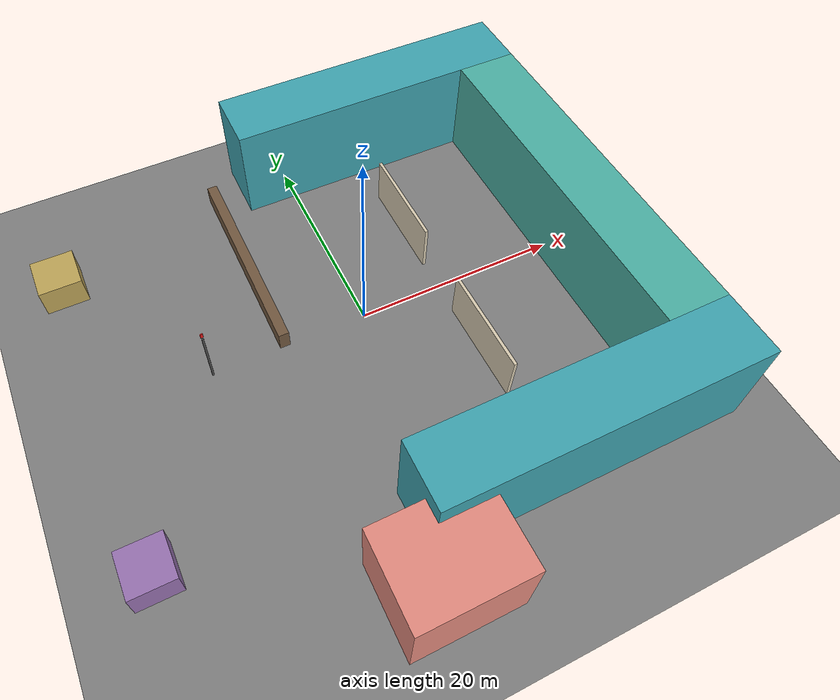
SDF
<?xml version="1.0" ?>
<!-- Scenario 5: Indoor-Outdoor / Building Penetration
     Complex environment with courtyards and building penetration
     Expected: Wall losses significant, ray tracing valuable for multipath -->
<sdf version="1.8">
  <world name="scenario_indoor_outdoor">

    <physics name="1ms" type="ignored">
      <max_step_size>0.001</max_step_size>
      <real_time_factor>1.0</real_time_factor>
    </physics>

    <plugin filename="ignition-gazebo-physics-system"
            name="ignition::gazebo::systems::Physics"/>
    <plugin filename="ignition-gazebo-scene-broadcaster-system"
            name="ignition::gazebo::systems::SceneBroadcaster"/>
    <plugin filename="ignition-gazebo-user-commands-system"
            name="ignition::gazebo::systems::UserCommands"/>

    <plugin filename="libHeatmapPlugin.so"
            name="heatmap_plugin::HeatmapPlugin">
      <grid_w>128</grid_w>
      <grid_h>128</grid_h>
      <cell_size>0.4</cell_size>
      <frequency_hz>3500000000</frequency_hz>
      <tx_dbm>30.0</tx_dbm>
      <tx_height>6.0</tx_height>
      <rx_height>1.5</rx_height>
      <tx_gain_dbi>8.0</tx_gain_dbi>
      <rx_gain_dbi>0.0</rx_gain_dbi>
      <gnb_pose>-15 0 6 0 0 0</gnb_pose>
      <propagation_model>3gpp_umi</propagation_model>
      <wall_loss_db>12.0</wall_loss_db>
      <reflection_coeff>0.7</reflection_coeff>
      <include_shadowing>false</include_shadowing>
      <max_reflections>3</max_reflections>
    </plugin>

    <light type="directional" name="sun">
      <cast_shadows>true</cast_shadows>
      <pose>0 0 30 0 0 0</pose>
      <diffuse>0.8 0.8 0.8 1</diffuse>
      <specular>0.2 0.2 0.2 1</specular>
      <direction>-0.5 0.1 -0.9</direction>
    </light>

    <!-- Ground plane - Grey -->
    <model name="ground_plane">
      <static>true</static>
      <link name="link">
        <collision name="collision">
          <geometry><plane><normal>0 0 1</normal><size>150 150</size></plane></geometry>
        </collision>
        <visual name="visual">
          <geometry><plane><normal>0 0 1</normal><size>150 150</size></plane></geometry>
          <material>
            <ambient>0.5 0.5 0.5 1</ambient>
            <diffuse>0.5 0.5 0.5 1</diffuse>
            <specular>0.1 0.1 0.1 1</specular>
            <emissive>0 0 0 1</emissive>
          </material>
        </visual>
      </link>
    </model>

    <!-- Outdoor gNB on lamp post -->
    <model name="gnb_lamppost">
      <static>true</static>
      <pose>-15 0 3 0 0 0</pose>
      <link name="link">
        <visual name="post">
          <geometry><cylinder><radius>0.1</radius><length>6</length></cylinder></geometry>
          <material>
            <ambient>0.3 0.3 0.3 1</ambient>
            <diffuse>0.3 0.3 0.3 1</diffuse>
            <specular>0.1 0.1 0.1 1</specular>
            <emissive>0 0 0 1</emissive>
          </material>
        </visual>
        <visual name="antenna">
          <pose>0 0 3.5 0 0 0</pose>
          <geometry><box><size>0.25 0.1 0.5</size></box></geometry>
          <material>
            <ambient>0.9 0.1 0.1 1</ambient>
            <diffuse>0.9 0.1 0.1 1</diffuse>
            <specular>0.2 0.2 0.2 1</specular>
            <emissive>0 0 0 1</emissive>
          </material>
        </visual>
      </link>
    </model>

    <!-- U-shaped building - North wing - Teal -->
    <model name="building_north_wing">
      <static>true</static>
      <pose>10 20 5 0 0 0</pose>
      <link name="link">
        <collision name="collision"><geometry><box><size>30 6 10</size></box></geometry></collision>
        <visual name="visual">
          <geometry><box><size>30 6 10</size></box></geometry>
          <material>
            <ambient>0.25 0.65 0.7 1</ambient>
            <diffuse>0.25 0.65 0.7 1</diffuse>
            <specular>0.1 0.1 0.1 1</specular>
            <emissive>0 0 0 1</emissive>
          </material>
        </visual>
      </link>
    </model>

    <!-- South wing - Teal -->
    <model name="building_south_wing">
      <static>true</static>
      <pose>10 -20 5 0 0 0</pose>
      <link name="link">
        <collision name="collision"><geometry><box><size>30 6 10</size></box></geometry></collision>
        <visual name="visual">
          <geometry><box><size>30 6 10</size></box></geometry>
          <material>
            <ambient>0.25 0.65 0.7 1</ambient>
            <diffuse>0.25 0.65 0.7 1</diffuse>
            <specular>0.1 0.1 0.1 1</specular>
            <emissive>0 0 0 1</emissive>
          </material>
        </visual>
      </link>
    </model>

    <!-- East wing - Slightly different teal -->
    <model name="building_east_wing">
      <static>true</static>
      <pose>22 0 5 0 0 0</pose>
      <link name="link">
        <collision name="collision"><geometry><box><size>6 34 10</size></box></geometry></collision>
        <visual name="visual">
          <geometry><box><size>6 34 10</size></box></geometry>
          <material>
            <ambient>0.3 0.7 0.65 1</ambient>
            <diffuse>0.3 0.7 0.65 1</diffuse>
            <specular>0.1 0.1 0.1 1</specular>
            <emissive>0 0 0 1</emissive>
          </material>
        </visual>
      </link>
    </model>

    <!-- Interior walls - Light beige -->
    <model name="interior_wall_1">
      <static>true</static>
      <pose>8 8 2.5 0 0 0</pose>
      <link name="link">
        <collision name="collision"><geometry><box><size>0.3 10 5</size></box></geometry></collision>
        <visual name="visual">
          <geometry><box><size>0.3 10 5</size></box></geometry>
          <material>
            <ambient>0.85 0.8 0.7 1</ambient>
            <diffuse>0.85 0.8 0.7 1</diffuse>
            <specular>0.1 0.1 0.1 1</specular>
            <emissive>0 0 0 1</emissive>
          </material>
        </visual>
      </link>
    </model>

    <model name="interior_wall_2">
      <static>true</static>
      <pose>8 -8 2.5 0 0 0</pose>
      <link name="link">
        <collision name="collision"><geometry><box><size>0.3 10 5</size></box></geometry></collision>
        <visual name="visual">
          <geometry><box><size>0.3 10 5</size></box></geometry>
          <material>
            <ambient>0.85 0.8 0.7 1</ambient>
            <diffuse>0.85 0.8 0.7 1</diffuse>
            <specular>0.1 0.1 0.1 1</specular>
            <emissive>0 0 0 1</emissive>
          </material>
        </visual>
      </link>
    </model>

    <!-- Standalone building - Coral/Salmon -->
    <model name="standalone_bldg">
      <static>true</static>
      <pose>-5 -25 4 0 0 0</pose>
      <link name="link">
        <collision name="collision"><geometry><box><size>10 8 8</size></box></geometry></collision>
        <visual name="visual">
          <geometry><box><size>10 8 8</size></box></geometry>
          <material>
            <ambient>0.9 0.55 0.5 1</ambient>
            <diffuse>0.9 0.55 0.5 1</diffuse>
            <specular>0.1 0.1 0.1 1</specular>
            <emissive>0 0 0 1</emissive>
          </material>
        </visual>
      </link>
    </model>

    <!-- Low wall / fence - Dark brown -->
    <model name="low_wall">
      <static>true</static>
      <pose>-8 10 1 0 0 0</pose>
      <link name="link">
        <collision name="collision"><geometry><box><size>1 20 2</size></box></geometry></collision>
        <visual name="visual">
          <geometry><box><size>1 20 2</size></box></geometry>
          <material>
            <ambient>0.45 0.35 0.25 1</ambient>
            <diffuse>0.45 0.35 0.25 1</diffuse>
            <specular>0.1 0.1 0.1 1</specular>
            <emissive>0 0 0 1</emissive>
          </material>
        </visual>
      </link>
    </model>

    <!-- Shed 1 - Yellow/Gold -->
    <model name="shed_1">
      <static>true</static>
      <pose>-25 15 1.5 0 0 0</pose>
      <link name="link">
        <collision name="collision"><geometry><box><size>4 4 3</size></box></geometry></collision>
        <visual name="visual">
          <geometry><box><size>4 4 3</size></box></geometry>
          <material>
            <ambient>0.75 0.65 0.35 1</ambient>
            <diffuse>0.75 0.65 0.35 1</diffuse>
            <specular>0.1 0.1 0.1 1</specular>
            <emissive>0 0 0 1</emissive>
          </material>
        </visual>
      </link>
    </model>

    <!-- Shed 2 - Purple -->
    <model name="shed_2">
      <static>true</static>
      <pose>-25 -15 1.5 0 0 0</pose>
      <link name="link">
        <collision name="collision"><geometry><box><size>4 4 3</size></box></geometry></collision>
        <visual name="visual">
          <geometry><box><size>4 4 3</size></box></geometry>
          <material>
            <ambient>0.6 0.45 0.7 1</ambient>
            <diffuse>0.6 0.45 0.7 1</diffuse>
            <specular>0.1 0.1 0.1 1</specular>
            <emissive>0 0 0 1</emissive>
          </material>
        </visual>
      </link>
    </model>

  </world>
</sdf>
